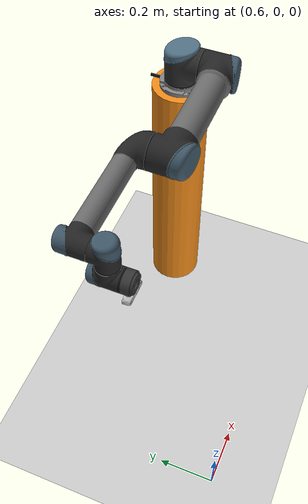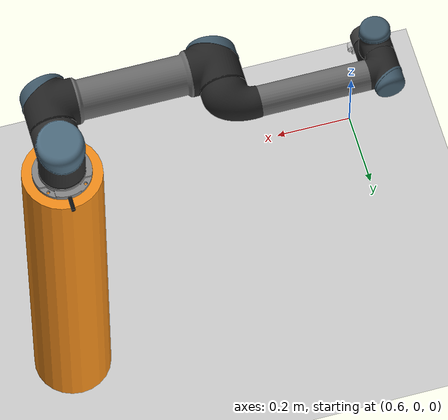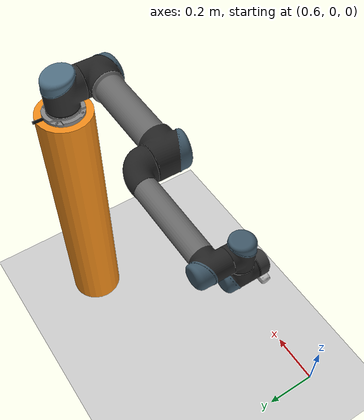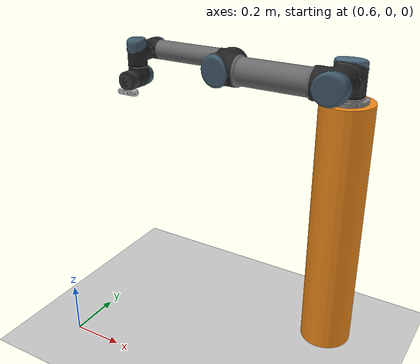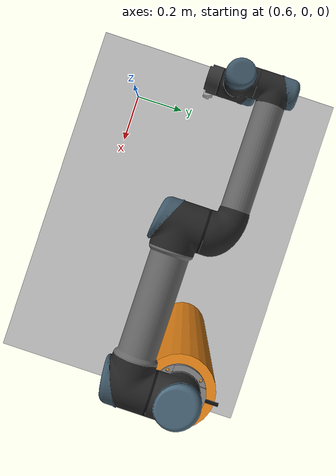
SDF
<sdf version="1.6">
 <world name="default">
  <light name="sun" type="directional">
   <pose>0 0 10 0 -0 0</pose>
   <diffuse>0.8 0.8 0.8 1</diffuse>
   <specular>0.2 0.2 0.2 1</specular>
   <attenuation>
    <range>1000</range>
    <constant>0.9</constant>
    <linear>0.01</linear>
    <quadratic>0.001</quadratic>
   </attenuation>
   <direction>-0.5 0.1 -0.9</direction>
  </light>
  <model name="ground_plane">
   <static>1</static>
   <link name="link">
    <collision name="collision">
     <geometry><plane><normal>0 0 1</normal><size>100 100</size></plane></geometry>
     <surface>
      <contact><collide_bitmask>65535</collide_bitmask></contact>
      <friction><ode><mu>100</mu><mu2>50</mu2></ode></friction>
     </surface>
    </collision>
    <visual name="visual">
     <cast_shadows>0</cast_shadows>
     <geometry><plane><normal>0 0 1</normal><size>100 100</size></plane></geometry>
     <material>
      <script><uri>file://media/materials/scripts/gazebo.material</uri><name>Gazebo/Grey</name></script>
     </material>
    </visual>
   </link>
  </model>
  <gravity>0 0 -9.8</gravity>
  <magnetic_field>6e-06 2.3e-05 -4.2e-05</magnetic_field>
  <atmosphere type="adiabatic"/>
  <physics name="default_physics" default="0" type="ode">
   <max_step_size>0.001</max_step_size>
   <real_time_factor>1</real_time_factor>
   <real_time_update_rate>1000</real_time_update_rate>
  </physics>
  <scene><ambient>0.4 0.4 0.4 1</ambient><background>0.7 0.7 0.7 1</background><shadows>1</shadows></scene>
  <audio><device>default</device></audio>
  <spherical_coordinates>
   <surface_model>EARTH_WGS84</surface_model>
   <latitude_deg>0</latitude_deg>
   <longitude_deg>0</longitude_deg>
   <elevation>0</elevation>
   <heading_deg>0</heading_deg>
  </spherical_coordinates>
  <model name="staticrobot">
   <link name="staticpedestal">
    <pose>1.5 0.5 0 0 -0 3.14</pose>
    <inertial>
     <pose>0 0 0.583333 0 -0 0</pose>
     <mass>24</mass>
     <inertia>
      <ixx>200.838</ixx>
      <ixy>200</ixy>
      <ixz>200</ixz>
      <iyy>200.838</iyy>
      <iyz>200</iyz>
      <izz>200.007</izz>
     </inertia>
    </inertial>
    <collision name="staticpedestal_collision">
     <pose>0 0 0.5 0 -0 0</pose>
     <geometry><cylinder><length>1</length><radius>0.1</radius></cylinder></geometry>
     <surface><friction><ode><mu>0.2</mu><mu2>0.2</mu2></ode></friction></surface>
    </collision>
    <collision name="staticpedestal_fixed_joint_lump__base_link_collision_1">
     <pose>0 0 1 0 -0 0</pose>
     <geometry>
      <mesh>
       <scale>1 1 1</scale>
       <uri>/home/sameer/catkin_ws/src/universal_robot/ur_description/meshes/ur5/collision/base.stl</uri>
      </mesh>
     </geometry>
    </collision>
    <visual name="staticpedestal_visual">
     <pose>0 0 0.5 0 -0 0</pose>
     <geometry><cylinder><length>1</length><radius>0.1</radius></cylinder></geometry>
     <material>
      <script><name>Gazebo/Orange</name><uri>file://media/materials/scripts/gazebo.material</uri></script>
     </material>
    </visual>
    <visual name="staticpedestal_fixed_joint_lump__base_link_visual_1">
     <pose>0 0 1 0 -0 0</pose>
     <geometry>
      <mesh>
       <scale>1 1 1</scale>
       <uri>/home/sameer/catkin_ws/src/universal_robot/ur_description/meshes/ur5/visual/base.dae</uri>
      </mesh>
     </geometry>
    </visual>
   </link>
   <joint name="staticworld_joint" type="fixed"><child>staticpedestal</child><parent>world</parent></joint>
   <link name="staticshoulder_link">
    <pose>1.5 0.5 1.08916 0 -0 3.14</pose>
    <inertial>
     <mass>3.7</mass>
     <inertia>
      <ixx>0.0102675</ixx>
      <ixy>0</ixy>
      <ixz>0</ixz>
      <iyy>0.0102675</iyy>
      <iyz>0</iyz>
      <izz>0.00666</izz>
     </inertia>
    </inertial>
    <collision name="staticshoulder_link_collision">
     <geometry>
      <mesh>
       <scale>1 1 1</scale>
       <uri>/home/sameer/catkin_ws/src/universal_robot/ur_description/meshes/ur5/collision/shoulder.stl</uri>
      </mesh>
     </geometry>
    </collision>
    <visual name="staticshoulder_link_visual">
     <geometry>
      <mesh>
       <scale>1 1 1</scale>
       <uri>/home/sameer/catkin_ws/src/universal_robot/ur_description/meshes/ur5/visual/shoulder.dae</uri>
      </mesh>
     </geometry>
     <material><script><uri>__default__</uri><name>__default__</name></script></material>
    </visual>
    <self_collide>1</self_collide>
   </link>
   <joint name="staticshoulder_pan_joint" type="revolute">
    <child>staticshoulder_link</child>
    <parent>staticpedestal</parent>
    <axis>
     <xyz>0 0 1</xyz>
     <limit><lower>-3.14159</lower><upper>3.14159</upper><effort>150</effort><velocity>3.15</velocity></limit>
     <dynamics>
      <damping>0</damping>
      <friction>0</friction>
      <spring_reference>0</spring_reference>
      <spring_stiffness>0</spring_stiffness>
     </dynamics>
     <use_parent_model_frame>1</use_parent_model_frame>
    </axis>
   </joint>
   <link name="staticupper_arm_link">
    <pose>1.49978 0.36415 1.08916 0.001593 1.57079 3.14159</pose>
    <inertial>
     <pose>0 0 0.28 0 -0 0</pose>
     <mass>8.393</mass>
     <inertia>
      <ixx>0.226891</ixx>
      <ixy>0</ixy>
      <ixz>0</ixz>
      <iyy>0.226891</iyy>
      <iyz>0</iyz>
      <izz>0.0151074</izz>
     </inertia>
    </inertial>
    <collision name="staticupper_arm_link_collision">
     <geometry>
      <mesh>
       <scale>1 1 1</scale>
       <uri>/home/sameer/catkin_ws/src/universal_robot/ur_description/meshes/ur5/collision/upperarm.stl</uri>
      </mesh>
     </geometry>
    </collision>
    <visual name="staticupper_arm_link_visual">
     <geometry>
      <mesh>
       <scale>1 1 1</scale>
       <uri>/home/sameer/catkin_ws/src/universal_robot/ur_description/meshes/ur5/visual/upperarm.dae</uri>
      </mesh>
     </geometry>
     <material><script><uri>__default__</uri><name>__default__</name></script></material>
    </visual>
    <self_collide>1</self_collide>
   </link>
   <joint name="staticshoulder_lift_joint" type="revolute">
    <child>staticupper_arm_link</child>
    <parent>staticshoulder_link</parent>
    <axis>
     <xyz>-0.001593 -0.999999 0</xyz>
     <limit><lower>-3.14159</lower><upper>3.14159</upper><effort>150</effort><velocity>3.15</velocity></limit>
     <dynamics>
      <damping>0</damping>
      <friction>0</friction>
      <spring_reference>0</spring_reference>
      <spring_stiffness>0</spring_stiffness>
     </dynamics>
     <use_parent_model_frame>1</use_parent_model_frame>
    </axis>
   </joint>
   <link name="staticforearm_link">
    <pose>1.07497 0.484527 1.08916 0.001593 1.57079 3.14159</pose>
    <inertial>
     <pose>0 0 0.196125 0 -0 0</pose>
     <mass>2.275</mass>
     <inertia>
      <ixx>0.0312168</ixx>
      <ixy>0</ixy>
      <ixz>0</ixz>
      <iyy>0.0312168</iyy>
      <iyz>0</iyz>
      <izz>0.004095</izz>
     </inertia>
    </inertial>
    <collision name="staticforearm_link_collision">
     <geometry>
      <mesh>
       <scale>1 1 1</scale>
       <uri>/home/sameer/catkin_ws/src/universal_robot/ur_description/meshes/ur5/collision/forearm.stl</uri>
      </mesh>
     </geometry>
    </collision>
    <visual name="staticforearm_link_visual">
     <geometry>
      <mesh>
       <scale>1 1 1</scale>
       <uri>/home/sameer/catkin_ws/src/universal_robot/ur_description/meshes/ur5/visual/forearm.dae</uri>
      </mesh>
     </geometry>
     <material><script><uri>__default__</uri><name>__default__</name></script></material>
    </visual>
    <self_collide>1</self_collide>
   </link>
   <joint name="staticelbow_joint" type="revolute">
    <child>staticforearm_link</child>
    <parent>staticupper_arm_link</parent>
    <axis>
     <xyz>-0.001593 -0.999999 0</xyz>
     <limit><lower>-3.14159</lower><upper>3.14159</upper><effort>150</effort><velocity>3.15</velocity></limit>
     <dynamics>
      <damping>0</damping>
      <friction>0</friction>
      <spring_reference>0</spring_reference>
      <spring_stiffness>0</spring_stiffness>
     </dynamics>
     <use_parent_model_frame>1</use_parent_model_frame>
    </axis>
   </joint>
   <link name="staticwrist_1_link">
    <pose>0.682725 0.485152 1.08916 -3.14159 -0 -0.001593</pose>
    <inertial>
     <pose>0 0.093 0 0 -0 0</pose>
     <mass>1.219</mass>
     <inertia>
      <ixx>0.0025599</ixx>
      <ixy>0</ixy>
      <ixz>0</ixz>
      <iyy>0.0025599</iyy>
      <iyz>0</iyz>
      <izz>0.0021942</izz>
     </inertia>
    </inertial>
    <collision name="staticwrist_1_link_collision">
     <geometry>
      <mesh>
       <scale>1 1 1</scale>
       <uri>/home/sameer/catkin_ws/src/universal_robot/ur_description/meshes/ur5/collision/wrist1.stl</uri>
      </mesh>
     </geometry>
    </collision>
    <visual name="staticwrist_1_link_visual">
     <geometry>
      <mesh>
       <scale>1 1 1</scale>
       <uri>/home/sameer/catkin_ws/src/universal_robot/ur_description/meshes/ur5/visual/wrist1.dae</uri>
      </mesh>
     </geometry>
     <material><script><uri>__default__</uri><name>__default__</name></script></material>
    </visual>
    <self_collide>1</self_collide>
   </link>
   <joint name="staticwrist_1_joint" type="revolute">
    <child>staticwrist_1_link</child>
    <parent>staticforearm_link</parent>
    <axis>
     <xyz>-0.001593 -0.999999 -0</xyz>
     <limit><lower>-3.14159</lower><upper>3.14159</upper><effort>28</effort><velocity>3.2</velocity></limit>
     <dynamics>
      <damping>0</damping>
      <friction>0</friction>
      <spring_reference>0</spring_reference>
      <spring_stiffness>0</spring_stiffness>
     </dynamics>
     <use_parent_model_frame>1</use_parent_model_frame>
    </axis>
   </joint>
   <link name="staticwrist_2_link">
    <pose>0.682577 0.392152 1.08916 -3.14159 -0 -0.001593</pose>
    <inertial>
     <pose>0 0 0.09465 0 -0 0</pose>
     <mass>1.219</mass>
     <inertia>
      <ixx>0.0025599</ixx>
      <ixy>0</ixy>
      <ixz>0</ixz>
      <iyy>0.0025599</iyy>
      <iyz>0</iyz>
      <izz>0.0021942</izz>
     </inertia>
    </inertial>
    <collision name="staticwrist_2_link_collision">
     <geometry>
      <mesh>
       <scale>1 1 1</scale>
       <uri>/home/sameer/catkin_ws/src/universal_robot/ur_description/meshes/ur5/collision/wrist2.stl</uri>
      </mesh>
     </geometry>
    </collision>
    <visual name="staticwrist_2_link_visual">
     <geometry>
      <mesh>
       <scale>1 1 1</scale>
       <uri>/home/sameer/catkin_ws/src/universal_robot/ur_description/meshes/ur5/visual/wrist2.dae</uri>
      </mesh>
     </geometry>
     <material><script><uri>__default__</uri><name>__default__</name></script></material>
    </visual>
    <self_collide>1</self_collide>
   </link>
   <joint name="staticwrist_2_joint" type="revolute">
    <child>staticwrist_2_link</child>
    <parent>staticwrist_1_link</parent>
    <axis>
     <xyz>-0 0 -1</xyz>
     <limit><lower>-3.14159</lower><upper>3.14159</upper><effort>28</effort><velocity>3.2</velocity></limit>
     <dynamics>
      <damping>0</damping>
      <friction>0</friction>
      <spring_reference>0</spring_reference>
      <spring_stiffness>0</spring_stiffness>
     </dynamics>
     <use_parent_model_frame>1</use_parent_model_frame>
    </axis>
   </joint>
   <link name="staticwrist_3_link">
    <pose>0.682577 0.392152 0.994509 -3.14159 -0 -0.001593</pose>
    <inertial>
     <pose>-0.013127 0.065023 0.031879 1.5708 -0 0</pose>
     <mass>0.7519</mass>
     <inertia>
      <ixx>0.000838218</ixx>
      <ixy>0.000104827</ixy>
      <ixz>-2.60446e-06</ixz>
      <iyy>0.00400712</iyy>
      <iyz>-2.16029e-07</iyz>
      <izz>0.0043111</izz>
     </inertia>
    </inertial>
    <collision name="staticwrist_3_link_collision">
     <geometry>
      <mesh>
       <scale>1 1 1</scale>
       <uri>/home/sameer/catkin_ws/src/universal_robot/ur_description/meshes/ur5/collision/wrist3.stl</uri>
      </mesh>
     </geometry>
    </collision>
    <collision name="staticwrist_3_link_fixed_joint_lump__ee_link_collision_1">
     <pose>-0 0.0723 0 0 -0 1.5708</pose>
     <geometry><box><size>0.01 0.01 0.01</size></box></geometry>
    </collision>
    <collision name="staticwrist_3_link_fixed_joint_lump__realsensecamera_link_collision_2">
     <pose>0 0.065 0.0425 0 -0 1.57</pose>
     <geometry><box><size>0.02505 0.09 0.025</size></box></geometry>
     <surface>
      <contact><ode><kp>1e+13</kp><kd>1</kd></ode></contact>
      <friction><ode><mu2>1</mu2><fdir1>0 0 0</fdir1></ode></friction>
     </surface>
    </collision>
    <visual name="staticwrist_3_link_visual">
     <geometry>
      <mesh>
       <scale>1 1 1</scale>
       <uri>/home/sameer/catkin_ws/src/universal_robot/ur_description/meshes/ur5/visual/wrist3.dae</uri>
      </mesh>
     </geometry>
     <material><script><uri>__default__</uri><name>__default__</name></script></material>
    </visual>
    <visual name="staticwrist_3_link_fixed_joint_lump__realsensecamera_link_visual_1">
     <pose>1.2e-05 0.0799 0.0425 1.5708 0 3.1408</pose>
     <geometry>
      <mesh><scale>1 1 1</scale><uri>/home/sameer/catkin_ws/src/realsense2_description/meshes/d435.dae</uri></mesh>
     </geometry>
     <material><script><uri>__default__</uri><name>__default__</name></script></material>
    </visual>
    <self_collide>1</self_collide>
    <sensor name="staticrealsensecameracolor" type="camera">
     <camera name="staticrealsensecamera">
      <horizontal_fov>1.21126</horizontal_fov>
      <image><width>640</width><height>480</height><format>RGB_INT8</format></image>
      <clip><near>0.1</near><far>100</far></clip>
      <noise><type>gaussian</type><mean>0</mean><stddev>0.007</stddev></noise>
     </camera>
     <always_on>1</always_on>
     <update_rate>100</update_rate>
     <visualize>0</visualize>
     <pose>-0.0175 0.065014 0.0425 0 -0 1.57</pose>
    </sensor>
    <sensor name="staticrealsensecameraired1" type="camera">
     <camera name="staticrealsensecamera">
      <horizontal_fov>1.48702</horizontal_fov>
      <image><width>1280</width><height>720</height><format>L_INT8</format></image>
      <clip><near>0.1</near><far>100</far></clip>
      <noise><type>gaussian</type><mean>0</mean><stddev>0.05</stddev></noise>
     </camera>
     <always_on>1</always_on>
     <update_rate>90</update_rate>
     <visualize>0</visualize>
     <pose>-0.0175 0.065014 0.0425 0 -0 1.57</pose>
    </sensor>
    <sensor name="staticrealsensecameraired2" type="camera">
     <camera name="staticrealsensecamera">
      <horizontal_fov>1.48702</horizontal_fov>
      <image><width>1280</width><height>720</height><format>L_INT8</format></image>
      <clip><near>0.1</near><far>100</far></clip>
      <noise><type>gaussian</type><mean>0</mean><stddev>0.05</stddev></noise>
     </camera>
     <always_on>1</always_on>
     <update_rate>90</update_rate>
     <visualize>0</visualize>
     <pose>-0.0175 0.065014 0.0425 0 -0 1.57</pose>
    </sensor>
    <sensor name="staticrealsensecameradepth" type="depth">
     <camera name="staticrealsensecamera">
      <horizontal_fov>1.48702</horizontal_fov>
      <image><width>1280</width><height>720</height></image>
      <clip><near>0.1</near><far>100</far></clip>
      <noise><type>gaussian</type><mean>0</mean><stddev>0.1</stddev></noise>
     </camera>
     <always_on>1</always_on>
     <update_rate>90</update_rate>
     <visualize>0</visualize>
     <pose>-0.0175 0.065014 0.0425 0 -0 1.57</pose>
    </sensor>
   </link>
   <joint name="staticwrist_3_joint" type="revolute">
    <child>staticwrist_3_link</child>
    <parent>staticwrist_2_link</parent>
    <axis>
     <xyz>-0.001593 -0.999999 -0</xyz>
     <limit><lower>-3.14159</lower><upper>3.14159</upper><effort>28</effort><velocity>3.2</velocity></limit>
     <dynamics>
      <damping>0</damping>
      <friction>0</friction>
      <spring_reference>0</spring_reference>
      <spring_stiffness>0</spring_stiffness>
     </dynamics>
     <use_parent_model_frame>1</use_parent_model_frame>
    </axis>
   </joint>
   <plugin name="ros_control" filename="libgazebo_ros_control.so"><robotNamespace>/</robotNamespace></plugin>
   <static>0</static>
   <plugin name="realsensecamera" filename="librealsense_gazebo_plugin.so">
    <prefix>realsensecamera</prefix>
    <depthUpdateRate>30.0</depthUpdateRate>
    <colorUpdateRate>30.0</colorUpdateRate>
    <infraredUpdateRate>30.0</infraredUpdateRate>
    <depthTopicName>depth/image_raw</depthTopicName>
    <depthCameraInfoTopicName>depth/camera_info</depthCameraInfoTopicName>
    <colorTopicName>color/image_raw</colorTopicName>
    <colorCameraInfoTopicName>color/camera_info</colorCameraInfoTopicName>
    <infrared1TopicName>infra1/image_raw</infrared1TopicName>
    <infrared1CameraInfoTopicName>infra1/camera_info</infrared1CameraInfoTopicName>
    <infrared2TopicName>infra2/image_raw</infrared2TopicName>
    <infrared2CameraInfoTopicName>infra2/camera_info</infrared2CameraInfoTopicName>
    <colorOpticalframeName>realsensecamera_color_optical_frame</colorOpticalframeName>
    <depthOpticalframeName>realsensecamera_depth_optical_frame</depthOpticalframeName>
    <infrared1OpticalframeName>realsensecamera_left_ir_optical_frame</infrared1OpticalframeName>
    <infrared2OpticalframeName>realsensecamera_right_ir_optical_frame</infrared2OpticalframeName>
    <rangeMinDepth>0.2</rangeMinDepth>
    <rangeMaxDepth>10.0</rangeMaxDepth>
    <pointCloud>1</pointCloud>
    <pointCloudTopicName>depth/color/points</pointCloudTopicName>
    <pointCloudCutoff>0.25</pointCloudCutoff>
    <pointCloudCutoffMax>9.0</pointCloudCutoffMax>
    <robotNamespace>/</robotNamespace>
   </plugin>
   <pose>-0 -0 1e-06 0 -0 0</pose>
  </model>
 </world>
</sdf>
